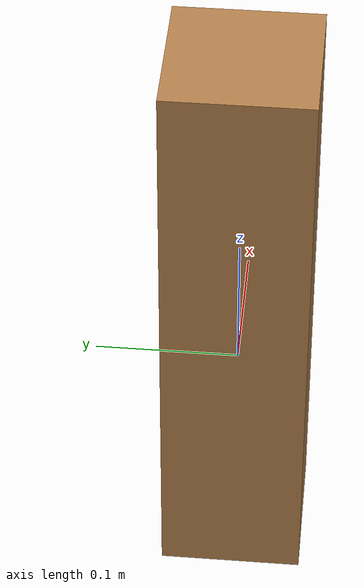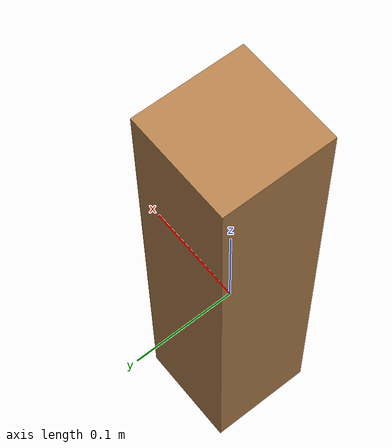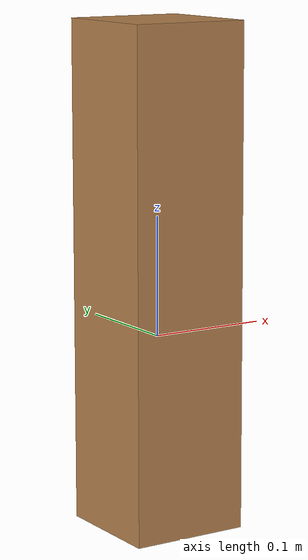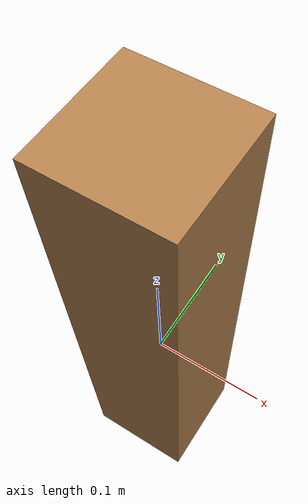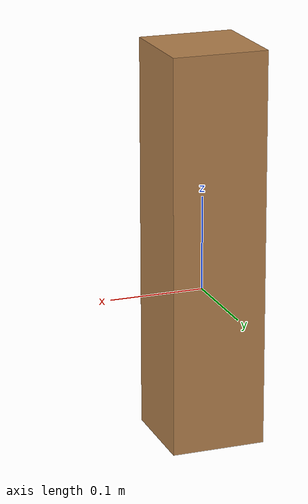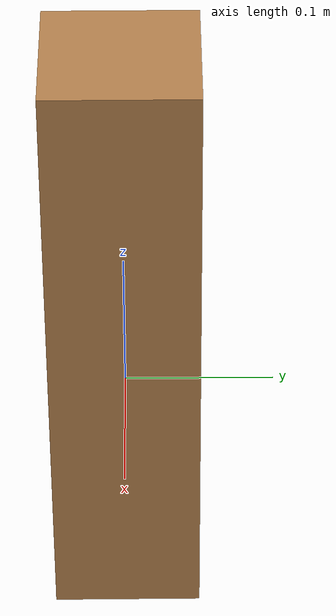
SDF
<?xml version="1.0" ?>
<sdf version="1.5">
  <model name="wood_cube_10cm">
    <static>false</static>
    <link name="link">
      <pose>0 0 0.05 0 0 0</pose>
      <inertial>
        <mass>0.5167</mass>
        <inertia>
          <ixx>0.0008611666666666669</ixx>
          <ixy>0</ixy>
          <ixz>0</ixz>
          <iyy>0.0008611666666666669</iyy>
          <iyz>0</iyz>
          <izz>0.0008611666666666669</izz>
        </inertia>
      </inertial>

      <collision name="collision">
        <geometry>
          <box>
            <size>0.1 0.1 0.42</size>
          </box>
        </geometry>
        <surface>
          <contact>
            <!-- Red Pine coefficients for longitudinal axis of the wood
                 according to:
                 http://www.fpl.fs.fed.us/documnts/fplgtr/fplgtr113/ch04.pdf -->
            <poissons_ratio>0.347</poissons_ratio>
            <elastic_modulus>8.8e+09</elastic_modulus>
            <ode>
              <kp>100000</kp>
              <kd>100</kd>
              <max_vel>100.0</max_vel>
              <min_depth>0.001</min_depth>
            </ode>
          </contact>
          <friction>
            <torsional>
              <coefficient>1.0</coefficient>
              <use_patch_radius>0</use_patch_radius>
              <surface_radius>0.01</surface_radius>
            </torsional>
          </friction>
        </surface>
      </collision>

      <visual name="visual">
        <geometry>
          <box>
            <size>0.1 0.1 0.42</size>
          </box>
        </geometry>
        <material>
          <script>
            <uri>file://media/materials/scripts/gazebo.material</uri>
            <name>Gazebo/Wood</name>
          </script>
        </material>
      </visual>

    </link>
  </model>
</sdf>
